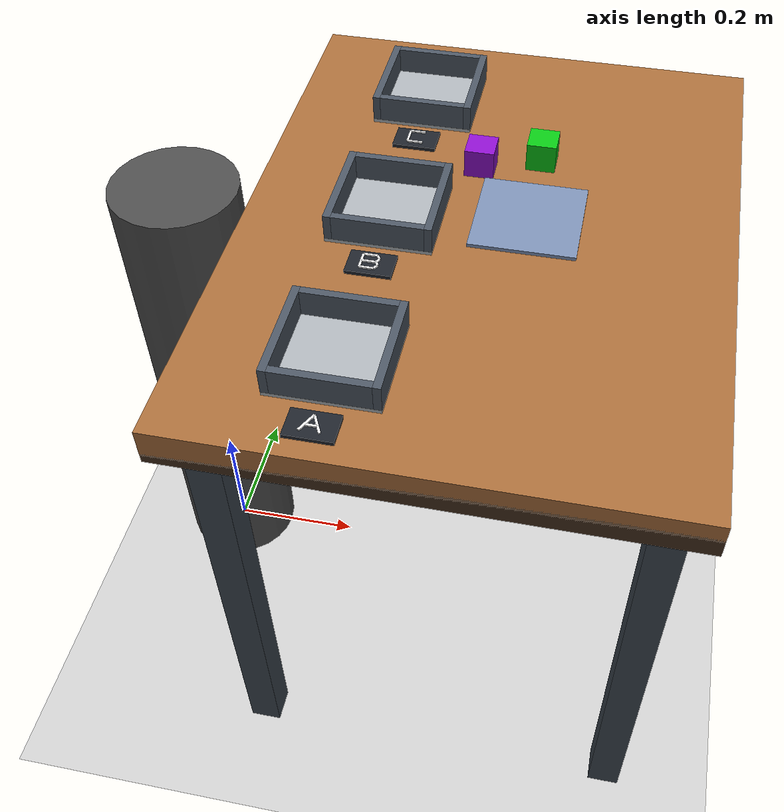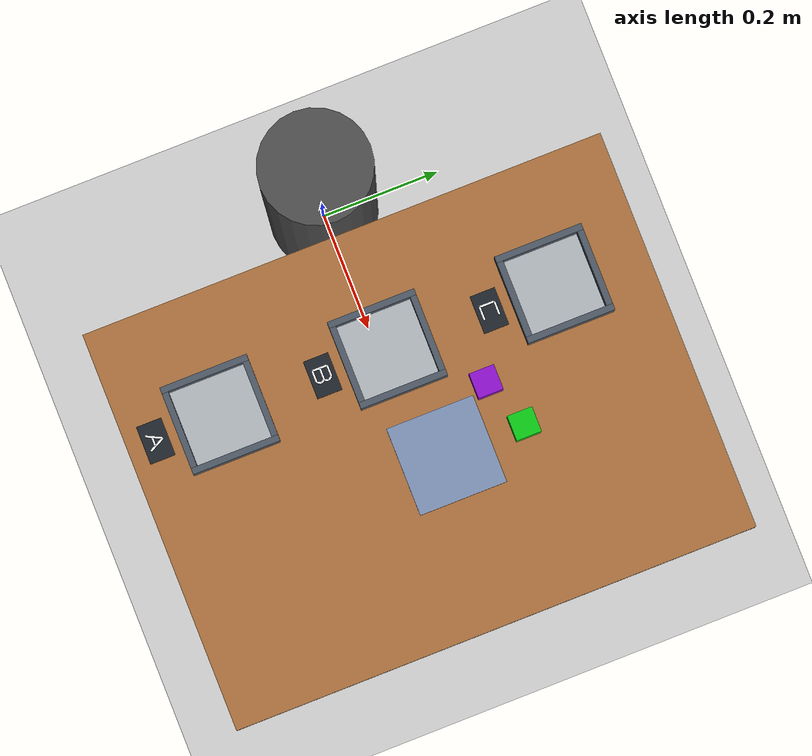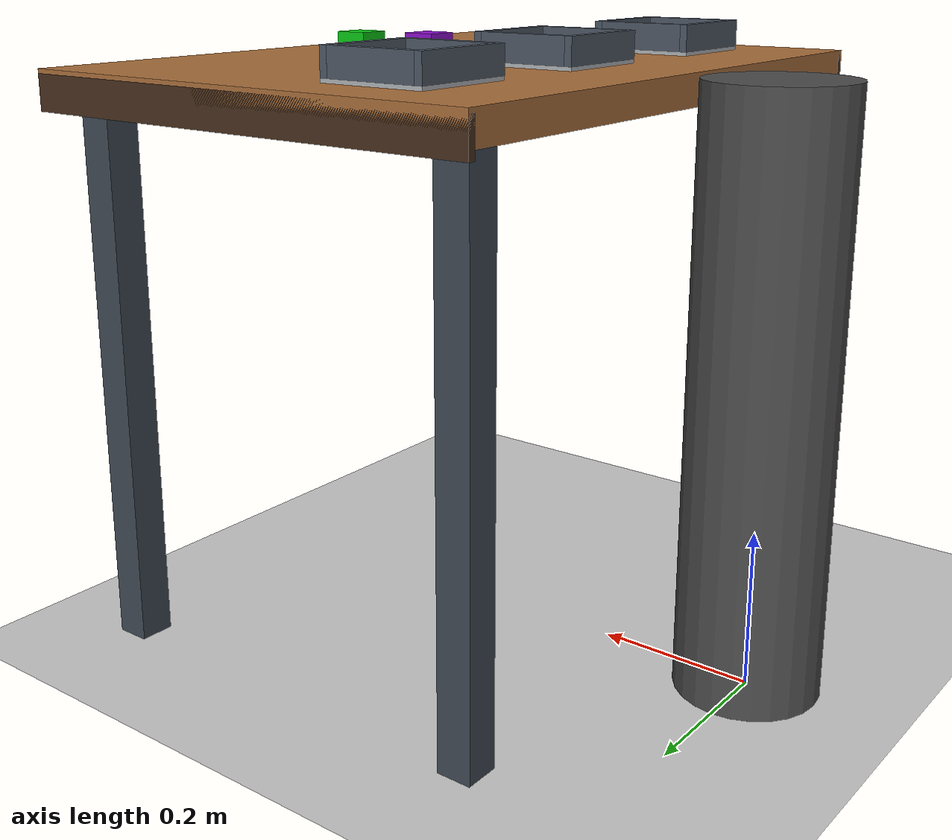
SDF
<sdf version="1.6">
 <world name="default">
  <gravity>0 0 -9.81</gravity>
  <include><uri>model://sun</uri></include>
  <include><uri>model://ground_plane</uri></include>
  <include><uri>model://ur3_task_table</uri><name>table</name><pose>0.43 0.0 0.72 0 0 0</pose></include>
  <include><uri>model://green_cube</uri><name>green_cube</name><pose>0.48 0.15 0.76 0 0 0</pose></include>
  <include><uri>model://purple_cube</uri><name>purple_cube</name><pose>0.40 0.12 0.76 0 0 0</pose></include>
  <include><uri>model://zone_a</uri><name>zone_a</name><pose>0.3 -0.27 0.7425 0 0 0</pose></include>
  <include><uri>model://zone_b</uri><name>zone_b</name><pose>0.3 0.0 0.7425 0 0 0</pose></include>
  <include><uri>model://zone_c</uri><name>zone_c</name><pose>0.3 0.27 0.7425 0 0 0</pose></include>
  <include><uri>model://buffer</uri><name>buffer</name><pose>0.48 0.025 0.7425 0 0 0</pose></include>
  <model name="robot_pedestal">
   <static>true</static>
   <pose>0 0 0.37 0 0 0</pose>
   <link name="link">
    <collision name="collision">
     <geometry><cylinder><radius>0.09</radius><length>0.74</length></cylinder></geometry>
    </collision>
    <visual name="visual">
     <geometry><cylinder><radius>0.09</radius><length>0.74</length></cylinder></geometry>
     <material><ambient>0.3 0.3 0.3 1</ambient></material>
    </visual>
   </link>
  </model>
  <plugin name="ur3_physical_gripper" filename="libur3_physical_gripper.so"/>
 </world>
</sdf>

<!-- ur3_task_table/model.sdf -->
<sdf version="1.6"><model name="ur3_task_table"><static>true</static><link name="link"><visual name="top"><pose>0.000000 0.000000 0.000000 0 0 0.000000</pose><geometry><box><size>0.640000 0.840000 0.040000</size></box></geometry><material><ambient>0.495 0.3225 0.17250000000000001 1</ambient><diffuse>0.66 0.43 0.23 1</diffuse><emissive>0.05280000000000001 0.0344 0.0184 1</emissive><specular>0.12 0.12 0.12 1</specular></material></visual><visual name="front_edge"><pose>0.000000 -0.415000 -0.008000 0 0 0.000000</pose><geometry><box><size>0.640000 0.010000 0.045000</size></box></geometry><material><ambient>0.2025 0.135 0.0825 1</ambient><diffuse>0.27 0.18 0.11 1</diffuse><emissive>0.0216 0.0144 0.0088 1</emissive><specular>0.12 0.12 0.12 1</specular></material></visual><visual name="back_edge"><pose>0.000000 0.415000 -0.008000 0 0 0.000000</pose><geometry><box><size>0.640000 0.010000 0.045000</size></box></geometry><material><ambient>0.2025 0.135 0.0825 1</ambient><diffuse>0.27 0.18 0.11 1</diffuse><emissive>0.0216 0.0144 0.0088 1</emissive><specular>0.12 0.12 0.12 1</specular></material></visual><visual name="leg_-0.27_-0.36"><pose>-0.270000 -0.360000 -0.370000 0 0 0.000000</pose><geometry><box><size>0.045000 0.045000 0.700000</size></box></geometry><material><ambient>0.18 0.21000000000000002 0.24 1</ambient><diffuse>0.24 0.28 0.32 1</diffuse><emissive>0.0192 0.022400000000000003 0.0256 1</emissive><specular>0.12 0.12 0.12 1</specular></material></visual><visual name="leg_-0.27_0.36"><pose>-0.270000 0.360000 -0.370000 0 0 0.000000</pose><geometry><box><size>0.045000 0.045000 0.700000</size></box></geometry><material><ambient>0.18 0.21000000000000002 0.24 1</ambient><diffuse>0.24 0.28 0.32 1</diffuse><emissive>0.0192 0.022400000000000003 0.0256 1</emissive><specular>0.12 0.12 0.12 1</specular></material></visual><visual name="leg_0.27_-0.36"><pose>0.270000 -0.360000 -0.370000 0 0 0.000000</pose><geometry><box><size>0.045000 0.045000 0.700000</size></box></geometry><material><ambient>0.18 0.21000000000000002 0.24 1</ambient><diffuse>0.24 0.28 0.32 1</diffuse><emissive>0.0192 0.022400000000000003 0.0256 1</emissive><specular>0.12 0.12 0.12 1</specular></material></visual><visual name="leg_0.27_0.36"><pose>0.270000 0.360000 -0.370000 0 0 0.000000</pose><geometry><box><size>0.045000 0.045000 0.700000</size></box></geometry><material><ambient>0.18 0.21000000000000002 0.24 1</ambient><diffuse>0.24 0.28 0.32 1</diffuse><emissive>0.0192 0.022400000000000003 0.0256 1</emissive><specular>0.12 0.12 0.12 1</specular></material></visual><collision name="top_collision"><pose>0.000000 0.000000 0.000000 0 0 0.000000</pose><geometry><box><size>0.640000 0.840000 0.040000</size></box></geometry></collision></link></model></sdf>

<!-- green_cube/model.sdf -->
<sdf version="1.6"><model name="green_cube"><link name="link"><inertial><mass>0.05</mass><inertia><ixx>0.00001</ixx><iyy>0.00001</iyy><izz>0.00001</izz></inertia></inertial><collision name="collision"><geometry><box><size>0.04 0.04 0.04</size></box></geometry></collision><visual name="visual"><geometry><box><size>0.04 0.04 0.04</size></box></geometry><material><ambient>0.04 0.78 0.08 1</ambient><diffuse>0.04 0.78 0.08 1</diffuse></material></visual></link></model></sdf>

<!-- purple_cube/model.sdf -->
<sdf version="1.6"><model name="purple_cube"><link name="link"><inertial><mass>0.05</mass><inertia><ixx>0.00001</ixx><iyy>0.00001</iyy><izz>0.00001</izz></inertia></inertial><collision name="collision"><geometry><box><size>0.04 0.04 0.04</size></box></geometry></collision><visual name="visual"><geometry><box><size>0.04 0.04 0.04</size></box></geometry><material><ambient>0.55 0.06 0.8 1</ambient><diffuse>0.55 0.06 0.8 1</diffuse></material></visual></link></model></sdf>

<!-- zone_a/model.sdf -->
<sdf version="1.6"><model name="zone_a"><static>true</static><link name="link"><visual name="floor"><pose>0.000000 0.000000 0.000000 0 0 0.000000</pose><geometry><box><size>0.140000 0.140000 0.005000</size></box></geometry><material><ambient>0.51 0.5249999999999999 0.54 1</ambient><diffuse>0.68 0.7 0.72 1</diffuse><emissive>0.054400000000000004 0.055999999999999994 0.0576 1</emissive><specular>0.12 0.12 0.12 1</specular></material></visual><visual name="left_wall"><pose>-0.065000 0.000000 0.020000 0 0 0.000000</pose><geometry><box><size>0.010000 0.140000 0.035000</size></box></geometry><material><ambient>0.22499999999999998 0.255 0.2925 1</ambient><diffuse>0.3 0.34 0.39 1</diffuse><emissive>0.024 0.027200000000000002 0.031200000000000002 1</emissive><specular>0.12 0.12 0.12 1</specular></material></visual><visual name="right_wall"><pose>0.065000 0.000000 0.020000 0 0 0.000000</pose><geometry><box><size>0.010000 0.140000 0.035000</size></box></geometry><material><ambient>0.22499999999999998 0.255 0.2925 1</ambient><diffuse>0.3 0.34 0.39 1</diffuse><emissive>0.024 0.027200000000000002 0.031200000000000002 1</emissive><specular>0.12 0.12 0.12 1</specular></material></visual><visual name="front_wall"><pose>0.000000 -0.065000 0.020000 0 0 0.000000</pose><geometry><box><size>0.120000 0.010000 0.035000</size></box></geometry><material><ambient>0.22499999999999998 0.255 0.2925 1</ambient><diffuse>0.3 0.34 0.39 1</diffuse><emissive>0.024 0.027200000000000002 0.031200000000000002 1</emissive><specular>0.12 0.12 0.12 1</specular></material></visual><visual name="back_wall"><pose>0.000000 0.065000 0.020000 0 0 0.000000</pose><geometry><box><size>0.120000 0.010000 0.035000</size></box></geometry><material><ambient>0.22499999999999998 0.255 0.2925 1</ambient><diffuse>0.3 0.34 0.39 1</diffuse><emissive>0.024 0.027200000000000002 0.031200000000000002 1</emissive><specular>0.12 0.12 0.12 1</specular></material></visual><visual name="label_plate"><pose>0.000000 -0.105000 0.000000 0 0 0.000000</pose><geometry><box><size>0.060000 0.040000 0.006000</size></box></geometry><material><ambient>0.09 0.10500000000000001 0.1275 1</ambient><diffuse>0.12 0.14 0.17 1</diffuse><emissive>0.0096 0.011200000000000002 0.013600000000000001 1</emissive><specular>0.12 0.12 0.12 1</specular></material></visual><visual name="label_a_0"><pose>-0.006000 -0.105000 0.005000 0 0 1.107149</pose><geometry><box><size>0.026833 0.003000 0.002000</size></box></geometry><material><ambient>0.75 0.75 0.75 1</ambient><diffuse>1.0 1.0 1.0 1</diffuse><emissive>0.08 0.08 0.08 1</emissive><specular>0.12 0.12 0.12 1</specular></material></visual><visual name="label_a_1"><pose>0.006000 -0.105000 0.005000 0 0 -1.107149</pose><geometry><box><size>0.026833 0.003000 0.002000</size></box></geometry><material><ambient>0.75 0.75 0.75 1</ambient><diffuse>1.0 1.0 1.0 1</diffuse><emissive>0.08 0.08 0.08 1</emissive><specular>0.12 0.12 0.12 1</specular></material></visual><visual name="label_a_2"><pose>0.000000 -0.108000 0.005000 0 0 0.000000</pose><geometry><box><size>0.014000 0.003000 0.002000</size></box></geometry><material><ambient>0.75 0.75 0.75 1</ambient><diffuse>1.0 1.0 1.0 1</diffuse><emissive>0.08 0.08 0.08 1</emissive><specular>0.12 0.12 0.12 1</specular></material></visual><collision name="floor_collision"><pose>0.000000 0.000000 0.000000 0 0 0.000000</pose><geometry><box><size>0.140000 0.140000 0.005000</size></box></geometry></collision><collision name="left_wall_collision"><pose>-0.065000 0.000000 0.020000 0 0 0.000000</pose><geometry><box><size>0.010000 0.140000 0.035000</size></box></geometry></collision><collision name="right_wall_collision"><pose>0.065000 0.000000 0.020000 0 0 0.000000</pose><geometry><box><size>0.010000 0.140000 0.035000</size></box></geometry></collision><collision name="front_wall_collision"><pose>0.000000 -0.065000 0.020000 0 0 0.000000</pose><geometry><box><size>0.120000 0.010000 0.035000</size></box></geometry></collision><collision name="back_wall_collision"><pose>0.000000 0.065000 0.020000 0 0 0.000000</pose><geometry><box><size>0.120000 0.010000 0.035000</size></box></geometry></collision></link></model></sdf>

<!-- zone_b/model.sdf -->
<sdf version="1.6"><model name="zone_b"><static>true</static><link name="link"><visual name="floor"><pose>0.000000 0.000000 0.000000 0 0 0.000000</pose><geometry><box><size>0.140000 0.140000 0.005000</size></box></geometry><material><ambient>0.51 0.5249999999999999 0.54 1</ambient><diffuse>0.68 0.7 0.72 1</diffuse><emissive>0.054400000000000004 0.055999999999999994 0.0576 1</emissive><specular>0.12 0.12 0.12 1</specular></material></visual><visual name="left_wall"><pose>-0.065000 0.000000 0.020000 0 0 0.000000</pose><geometry><box><size>0.010000 0.140000 0.035000</size></box></geometry><material><ambient>0.22499999999999998 0.255 0.2925 1</ambient><diffuse>0.3 0.34 0.39 1</diffuse><emissive>0.024 0.027200000000000002 0.031200000000000002 1</emissive><specular>0.12 0.12 0.12 1</specular></material></visual><visual name="right_wall"><pose>0.065000 0.000000 0.020000 0 0 0.000000</pose><geometry><box><size>0.010000 0.140000 0.035000</size></box></geometry><material><ambient>0.22499999999999998 0.255 0.2925 1</ambient><diffuse>0.3 0.34 0.39 1</diffuse><emissive>0.024 0.027200000000000002 0.031200000000000002 1</emissive><specular>0.12 0.12 0.12 1</specular></material></visual><visual name="front_wall"><pose>0.000000 -0.065000 0.020000 0 0 0.000000</pose><geometry><box><size>0.120000 0.010000 0.035000</size></box></geometry><material><ambient>0.22499999999999998 0.255 0.2925 1</ambient><diffuse>0.3 0.34 0.39 1</diffuse><emissive>0.024 0.027200000000000002 0.031200000000000002 1</emissive><specular>0.12 0.12 0.12 1</specular></material></visual><visual name="back_wall"><pose>0.000000 0.065000 0.020000 0 0 0.000000</pose><geometry><box><size>0.120000 0.010000 0.035000</size></box></geometry><material><ambient>0.22499999999999998 0.255 0.2925 1</ambient><diffuse>0.3 0.34 0.39 1</diffuse><emissive>0.024 0.027200000000000002 0.031200000000000002 1</emissive><specular>0.12 0.12 0.12 1</specular></material></visual><visual name="label_plate"><pose>0.000000 -0.105000 0.000000 0 0 0.000000</pose><geometry><box><size>0.060000 0.040000 0.006000</size></box></geometry><material><ambient>0.09 0.10500000000000001 0.1275 1</ambient><diffuse>0.12 0.14 0.17 1</diffuse><emissive>0.0096 0.011200000000000002 0.013600000000000001 1</emissive><specular>0.12 0.12 0.12 1</specular></material></visual><visual name="label_b_0"><pose>-0.012000 -0.105000 0.005000 0 0 1.570796</pose><geometry><box><size>0.024000 0.003000 0.002000</size></box></geometry><material><ambient>0.75 0.75 0.75 1</ambient><diffuse>1.0 1.0 1.0 1</diffuse><emissive>0.08 0.08 0.08 1</emissive><specular>0.12 0.12 0.12 1</specular></material></visual><visual name="label_b_1"><pose>-0.003000 -0.093000 0.005000 0 0 0.000000</pose><geometry><box><size>0.018000 0.003000 0.002000</size></box></geometry><material><ambient>0.75 0.75 0.75 1</ambient><diffuse>1.0 1.0 1.0 1</diffuse><emissive>0.08 0.08 0.08 1</emissive><specular>0.12 0.12 0.12 1</specular></material></visual><visual name="label_b_2"><pose>-0.002500 -0.105000 0.005000 0 0 0.000000</pose><geometry><box><size>0.019000 0.003000 0.002000</size></box></geometry><material><ambient>0.75 0.75 0.75 1</ambient><diffuse>1.0 1.0 1.0 1</diffuse><emissive>0.08 0.08 0.08 1</emissive><specular>0.12 0.12 0.12 1</specular></material></visual><visual name="label_b_3"><pose>-0.003000 -0.117000 0.005000 0 0 0.000000</pose><geometry><box><size>0.018000 0.003000 0.002000</size></box></geometry><material><ambient>0.75 0.75 0.75 1</ambient><diffuse>1.0 1.0 1.0 1</diffuse><emissive>0.08 0.08 0.08 1</emissive><specular>0.12 0.12 0.12 1</specular></material></visual><visual name="label_b_4"><pose>0.008000 -0.096000 0.005000 0 0 -0.982794</pose><geometry><box><size>0.007211 0.003000 0.002000</size></box></geometry><material><ambient>0.75 0.75 0.75 1</ambient><diffuse>1.0 1.0 1.0 1</diffuse><emissive>0.08 0.08 0.08 1</emissive><specular>0.12 0.12 0.12 1</specular></material></visual><visual name="label_b_5"><pose>0.008500 -0.102000 0.005000 0 0 -2.034444</pose><geometry><box><size>0.006708 0.003000 0.002000</size></box></geometry><material><ambient>0.75 0.75 0.75 1</ambient><diffuse>1.0 1.0 1.0 1</diffuse><emissive>0.08 0.08 0.08 1</emissive><specular>0.12 0.12 0.12 1</specular></material></visual><visual name="label_b_6"><pose>0.008500 -0.108000 0.005000 0 0 -1.107149</pose><geometry><box><size>0.006708 0.003000 0.002000</size></box></geometry><material><ambient>0.75 0.75 0.75 1</ambient><diffuse>1.0 1.0 1.0 1</diffuse><emissive>0.08 0.08 0.08 1</emissive><specular>0.12 0.12 0.12 1</specular></material></visual><visual name="label_b_7"><pose>0.008000 -0.114000 0.005000 0 0 -2.158799</pose><geometry><box><size>0.007211 0.003000 0.002000</size></box></geometry><material><ambient>0.75 0.75 0.75 1</ambient><diffuse>1.0 1.0 1.0 1</diffuse><emissive>0.08 0.08 0.08 1</emissive><specular>0.12 0.12 0.12 1</specular></material></visual><collision name="floor_collision"><pose>0.000000 0.000000 0.000000 0 0 0.000000</pose><geometry><box><size>0.140000 0.140000 0.005000</size></box></geometry></collision><collision name="left_wall_collision"><pose>-0.065000 0.000000 0.020000 0 0 0.000000</pose><geometry><box><size>0.010000 0.140000 0.035000</size></box></geometry></collision><collision name="right_wall_collision"><pose>0.065000 0.000000 0.020000 0 0 0.000000</pose><geometry><box><size>0.010000 0.140000 0.035000</size></box></geometry></collision><collision name="front_wall_collision"><pose>0.000000 -0.065000 0.020000 0 0 0.000000</pose><geometry><box><size>0.120000 0.010000 0.035000</size></box></geometry></collision><collision name="back_wall_collision"><pose>0.000000 0.065000 0.020000 0 0 0.000000</pose><geometry><box><size>0.120000 0.010000 0.035000</size></box></geometry></collision></link></model></sdf>

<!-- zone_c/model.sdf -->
<sdf version="1.6"><model name="zone_c"><static>true</static><link name="link"><visual name="floor"><pose>0.000000 0.000000 0.000000 0 0 0.000000</pose><geometry><box><size>0.140000 0.140000 0.005000</size></box></geometry><material><ambient>0.51 0.5249999999999999 0.54 1</ambient><diffuse>0.68 0.7 0.72 1</diffuse><emissive>0.054400000000000004 0.055999999999999994 0.0576 1</emissive><specular>0.12 0.12 0.12 1</specular></material></visual><visual name="left_wall"><pose>-0.065000 0.000000 0.020000 0 0 0.000000</pose><geometry><box><size>0.010000 0.140000 0.035000</size></box></geometry><material><ambient>0.22499999999999998 0.255 0.2925 1</ambient><diffuse>0.3 0.34 0.39 1</diffuse><emissive>0.024 0.027200000000000002 0.031200000000000002 1</emissive><specular>0.12 0.12 0.12 1</specular></material></visual><visual name="right_wall"><pose>0.065000 0.000000 0.020000 0 0 0.000000</pose><geometry><box><size>0.010000 0.140000 0.035000</size></box></geometry><material><ambient>0.22499999999999998 0.255 0.2925 1</ambient><diffuse>0.3 0.34 0.39 1</diffuse><emissive>0.024 0.027200000000000002 0.031200000000000002 1</emissive><specular>0.12 0.12 0.12 1</specular></material></visual><visual name="front_wall"><pose>0.000000 -0.065000 0.020000 0 0 0.000000</pose><geometry><box><size>0.120000 0.010000 0.035000</size></box></geometry><material><ambient>0.22499999999999998 0.255 0.2925 1</ambient><diffuse>0.3 0.34 0.39 1</diffuse><emissive>0.024 0.027200000000000002 0.031200000000000002 1</emissive><specular>0.12 0.12 0.12 1</specular></material></visual><visual name="back_wall"><pose>0.000000 0.065000 0.020000 0 0 0.000000</pose><geometry><box><size>0.120000 0.010000 0.035000</size></box></geometry><material><ambient>0.22499999999999998 0.255 0.2925 1</ambient><diffuse>0.3 0.34 0.39 1</diffuse><emissive>0.024 0.027200000000000002 0.031200000000000002 1</emissive><specular>0.12 0.12 0.12 1</specular></material></visual><visual name="label_plate"><pose>0.000000 -0.105000 0.000000 0 0 0.000000</pose><geometry><box><size>0.060000 0.040000 0.006000</size></box></geometry><material><ambient>0.09 0.10500000000000001 0.1275 1</ambient><diffuse>0.12 0.14 0.17 1</diffuse><emissive>0.0096 0.011200000000000002 0.013600000000000001 1</emissive><specular>0.12 0.12 0.12 1</specular></material></visual><visual name="label_c_0"><pose>-0.010000 -0.105000 0.005000 0 0 1.570796</pose><geometry><box><size>0.024000 0.003000 0.002000</size></box></geometry><material><ambient>0.75 0.75 0.75 1</ambient><diffuse>1.0 1.0 1.0 1</diffuse><emissive>0.08 0.08 0.08 1</emissive><specular>0.12 0.12 0.12 1</specular></material></visual><visual name="label_c_1"><pose>0.000500 -0.093000 0.005000 0 0 0.000000</pose><geometry><box><size>0.021000 0.003000 0.002000</size></box></geometry><material><ambient>0.75 0.75 0.75 1</ambient><diffuse>1.0 1.0 1.0 1</diffuse><emissive>0.08 0.08 0.08 1</emissive><specular>0.12 0.12 0.12 1</specular></material></visual><visual name="label_c_2"><pose>0.000500 -0.117000 0.005000 0 0 0.000000</pose><geometry><box><size>0.021000 0.003000 0.002000</size></box></geometry><material><ambient>0.75 0.75 0.75 1</ambient><diffuse>1.0 1.0 1.0 1</diffuse><emissive>0.08 0.08 0.08 1</emissive><specular>0.12 0.12 0.12 1</specular></material></visual><collision name="floor_collision"><pose>0.000000 0.000000 0.000000 0 0 0.000000</pose><geometry><box><size>0.140000 0.140000 0.005000</size></box></geometry></collision><collision name="left_wall_collision"><pose>-0.065000 0.000000 0.020000 0 0 0.000000</pose><geometry><box><size>0.010000 0.140000 0.035000</size></box></geometry></collision><collision name="right_wall_collision"><pose>0.065000 0.000000 0.020000 0 0 0.000000</pose><geometry><box><size>0.010000 0.140000 0.035000</size></box></geometry></collision><collision name="front_wall_collision"><pose>0.000000 -0.065000 0.020000 0 0 0.000000</pose><geometry><box><size>0.120000 0.010000 0.035000</size></box></geometry></collision><collision name="back_wall_collision"><pose>0.000000 0.065000 0.020000 0 0 0.000000</pose><geometry><box><size>0.120000 0.010000 0.035000</size></box></geometry></collision></link></model></sdf>

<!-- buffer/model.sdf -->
<sdf version="1.6">
  <model name="buffer">
    <static>true</static>
    <link name="link">
      <visual name="floor">
        <pose>0.000000 0.000000 0.000000 0 0 0.000000</pose>
        <geometry>
          <box>
            <size>0.140000 0.140000 0.005000</size>
          </box>
        </geometry>
        <material>
          <ambient>0.36 0.42 0.52 1</ambient>
          <diffuse>0.48 0.56 0.70 1</diffuse>
          <emissive>0.054400000000000004 0.055999999999999994 0.0576 1</emissive>
          <specular>0.12 0.12 0.12 1</specular>
        </material>
      </visual>
      <collision name="floor_collision"><pose>0.000000 0.000000 0.000000 0 0 0.000000</pose><geometry>
          <box>
            <size>0.140000 0.140000 0.005000</size>
          </box>
        </geometry></collision></link>
  </model>
</sdf>
